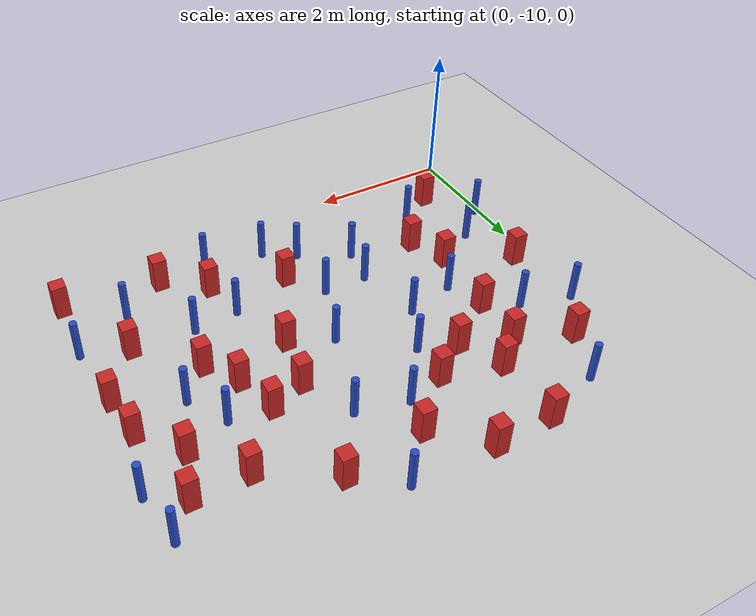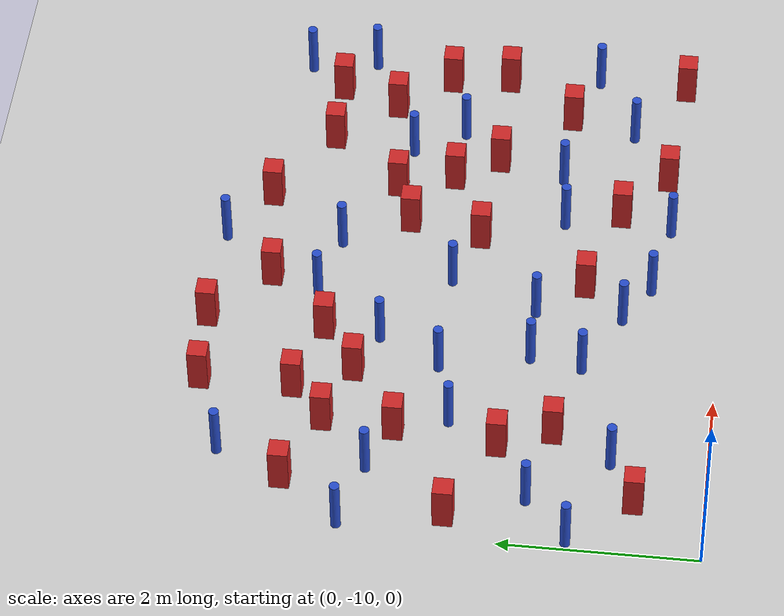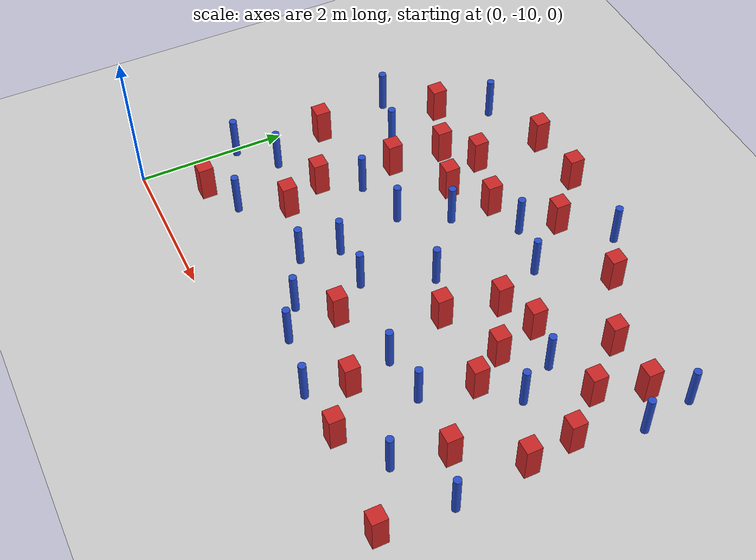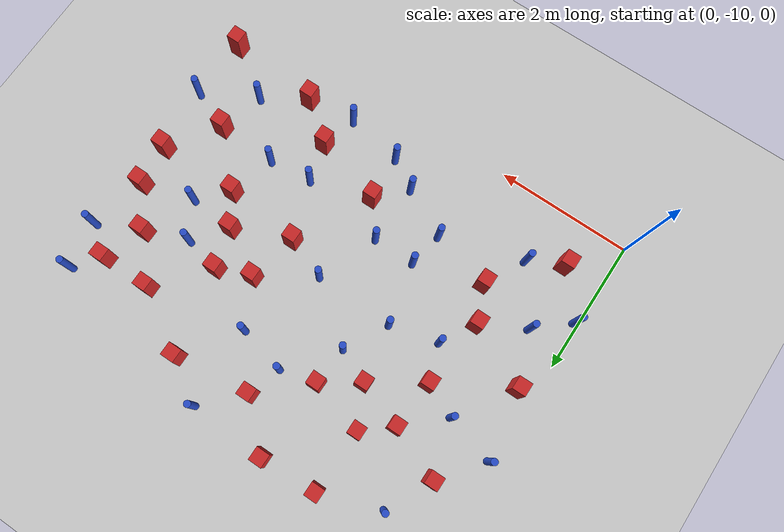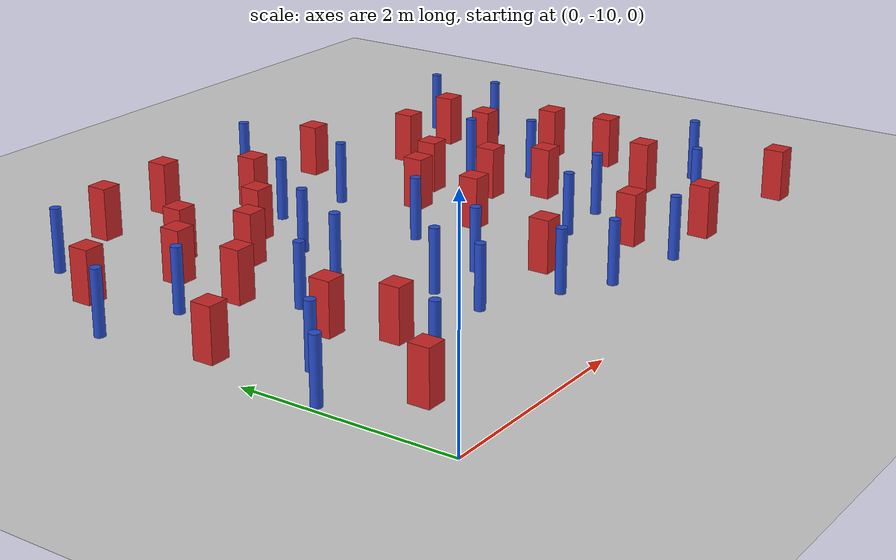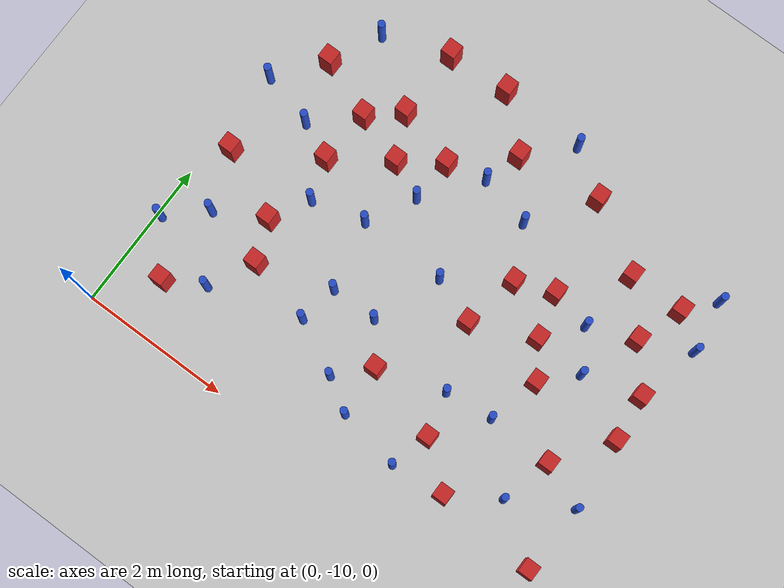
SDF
<sdf version="1.6">
 <world name="default">
  <model name="ground_plane">
   <static>1</static>
   <link name="link">
    <collision name="collision">
     <geometry><plane><normal>0 0 1</normal><size>100 100</size></plane></geometry>
     <surface><friction><ode><mu>100</mu><mu2>50</mu2></ode></friction></surface>
    </collision>
    <visual name="visual">
     <cast_shadows>0</cast_shadows>
     <geometry><plane><normal>0 0 1</normal><size>100 100</size></plane></geometry>
     <material>
      <ambient>1.0 1.0 1.0 1.0</ambient>
      <diffuse>0.8 0.8 0.8 1.0</diffuse>
      <specular>0.01 0.01 0.01 1.000000</specular>
     </material>
    </visual>
   </link>
  </model>
  <model name="pole_obstacle1">
   <static>true</static>
   <pose>4.88868578763 -8.25495165366 7.38925637345e-09 -8.471706928e-08 1.24976765081e-08 -1.74513093015e-07</pose>
   <link name="link">
    <pose>0 0 0.3 0 -0 0</pose>
    <inertial>
     <mass>1</mass>
     <inertia><ixx>0.145833</ixx><ixy>0</ixy><ixz>0</ixz><iyy>0.145833</iyy><iyz>0</iyz><izz>0.125</izz></inertia>
    </inertial>
    <collision name="collision">
     <geometry><cylinder><radius>0.05</radius><length>.6</length></cylinder></geometry>
    </collision>
    <visual name="visual">
     <geometry><cylinder><radius>0.05</radius><length>.6</length></cylinder></geometry>
     <material>
      <script><name>Gazebo/Blue</name><uri>file://media/materials/scripts/gazebo.material</uri></script>
     </material>
    </visual>
   </link>
  </model>
  <model name="pole_obstacle3">
   <static>true</static>
   <pose>5.14229467991 -6.63828792277 7.38925637345e-09 -8.47170692796e-08 1.24976764786e-08 -1.74513093032e-07</pose>
   <link name="link">
    <pose>0 0 0.3 0 -0 0</pose>
    <inertial>
     <mass>1</mass>
     <inertia><ixx>0.145833</ixx><ixy>0</ixy><ixz>0</ixz><iyy>0.145833</iyy><iyz>0</iyz><izz>0.125</izz></inertia>
    </inertial>
    <collision name="collision">
     <geometry><cylinder><radius>0.05</radius><length>.6</length></cylinder></geometry>
    </collision>
    <visual name="visual">
     <geometry><cylinder><radius>0.05</radius><length>.6</length></cylinder></geometry>
     <material>
      <script><name>Gazebo/Blue</name><uri>file://media/materials/scripts/gazebo.material</uri></script>
     </material>
    </visual>
   </link>
  </model>
  <model name="square_post_obstacle4">
   <static>true</static>
   <pose>5.75681799683 -8.28340268561 1.91545236811e-07 -7.35059704564e-06 1.12565212e-07 2.39332434364e-05</pose>
   <link name="link">
    <pose>0 0 0.25 0 -0 0</pose>
    <inertial>
     <mass>100</mass>
     <inertia>
      <ixx>0.166667</ixx>
      <ixy>0</ixy>
      <ixz>0</ixz>
      <iyy>0.166667</iyy>
      <iyz>0</iyz>
      <izz>0.166667</izz>
     </inertia>
    </inertial>
    <collision name="collision"><geometry><box><size>.2 .2 .5</size></box></geometry></collision>
    <visual name="visual">
     <geometry><box><size>.2 .2 .5</size></box></geometry>
     <material>
      <script><name>Gazebo/Red</name><uri>file://media/materials/scripts/gazebo.material</uri></script>
     </material>
    </visual>
   </link>
  </model>
  <model name="square_post_obstacle7">
   <static>true</static>
   <pose>5.75419726589 -6.40110719447 1.91545236811e-07 -7.35059704564e-06 1.12565212e-07 2.39332434364e-05</pose>
   <link name="link">
    <pose>0 0 0.25 0 -0 0</pose>
    <inertial>
     <mass>100</mass>
     <inertia>
      <ixx>0.166667</ixx>
      <ixy>0</ixy>
      <ixz>0</ixz>
      <iyy>0.166667</iyy>
      <iyz>0</iyz>
      <izz>0.166667</izz>
     </inertia>
    </inertial>
    <collision name="collision"><geometry><box><size>.2 .2 .5</size></box></geometry></collision>
    <visual name="visual">
     <geometry><box><size>.2 .2 .5</size></box></geometry>
     <material>
      <script><name>Gazebo/Red</name><uri>file://media/materials/scripts/gazebo.material</uri></script>
     </material>
    </visual>
   </link>
  </model>
  <model name="square_post_obstacle11">
   <static>true</static>
   <pose>4.39549333194 -8.90382253059 1.91545236811e-07 -7.35059704564e-06 1.12565212e-07 2.39332434364e-05</pose>
   <link name="link">
    <pose>0 0 0.25 0 -0 0</pose>
    <inertial>
     <mass>100</mass>
     <inertia>
      <ixx>0.166667</ixx>
      <ixy>0</ixy>
      <ixz>0</ixz>
      <iyy>0.166667</iyy>
      <iyz>0</iyz>
      <izz>0.166667</izz>
     </inertia>
    </inertial>
    <collision name="collision"><geometry><box><size>.2 .2 .5</size></box></geometry></collision>
    <visual name="visual">
     <geometry><box><size>.2 .2 .5</size></box></geometry>
     <material>
      <script><name>Gazebo/Red</name><uri>file://media/materials/scripts/gazebo.material</uri></script>
     </material>
    </visual>
   </link>
  </model>
  <model name="square_post_obstacle13">
   <static>true</static>
   <pose>4.59887530118 -6.53221918266 1.91545236811e-07 -7.35059704564e-06 1.12565212e-07 2.39332434364e-05</pose>
   <link name="link">
    <pose>0 0 0.25 0 -0 0</pose>
    <inertial>
     <mass>100</mass>
     <inertia>
      <ixx>0.166667</ixx>
      <ixy>0</ixy>
      <ixz>0</ixz>
      <iyy>0.166667</iyy>
      <iyz>0</iyz>
      <izz>0.166667</izz>
     </inertia>
    </inertial>
    <collision name="collision"><geometry><box><size>.2 .2 .5</size></box></geometry></collision>
    <visual name="visual">
     <geometry><box><size>.2 .2 .5</size></box></geometry>
     <material>
      <script><name>Gazebo/Red</name><uri>file://media/materials/scripts/gazebo.material</uri></script>
     </material>
    </visual>
   </link>
  </model>
  <model name="pole_obstacle12">
   <static>true</static>
   <pose>0.798774729147 -6.63545786462 7.38925637345e-09 -8.471706928e-08 1.24976765086e-08 -1.74513093015e-07</pose>
   <link name="link">
    <pose>0 0 0.3 0 -0 0</pose>
    <inertial>
     <mass>1</mass>
     <inertia><ixx>0.145833</ixx><ixy>0</ixy><ixz>0</ixz><iyy>0.145833</iyy><iyz>0</iyz><izz>0.125</izz></inertia>
    </inertial>
    <collision name="collision">
     <geometry><cylinder><radius>0.05</radius><length>.6</length></cylinder></geometry>
    </collision>
    <visual name="visual">
     <geometry><cylinder><radius>0.05</radius><length>.6</length></cylinder></geometry>
     <material>
      <script><name>Gazebo/Blue</name><uri>file://media/materials/scripts/gazebo.material</uri></script>
     </material>
    </visual>
   </link>
  </model>
  <model name="pole_obstacle17">
   <static>true</static>
   <pose>3.42017889563 -9.2823077383 7.38925637345e-09 -8.47170692793e-08 1.24976764408e-08 -1.74513093041e-07</pose>
   <link name="link">
    <pose>0 0 0.3 0 -0 0</pose>
    <inertial>
     <mass>1</mass>
     <inertia><ixx>0.145833</ixx><ixy>0</ixy><ixz>0</ixz><iyy>0.145833</iyy><iyz>0</iyz><izz>0.125</izz></inertia>
    </inertial>
    <collision name="collision">
     <geometry><cylinder><radius>0.05</radius><length>.6</length></cylinder></geometry>
    </collision>
    <visual name="visual">
     <geometry><cylinder><radius>0.05</radius><length>.6</length></cylinder></geometry>
     <material>
      <script><name>Gazebo/Blue</name><uri>file://media/materials/scripts/gazebo.material</uri></script>
     </material>
    </visual>
   </link>
  </model>
  <model name="square_post_obstacle26">
   <static>true</static>
   <pose>6.26326169163 -7.56500785191 1.91545236811e-07 -7.35059704564e-06 1.12565212e-07 2.39332434364e-05</pose>
   <link name="link">
    <pose>0 0 0.25 0 -0 0</pose>
    <inertial>
     <mass>100</mass>
     <inertia>
      <ixx>0.166667</ixx>
      <ixy>0</ixy>
      <ixz>0</ixz>
      <iyy>0.166667</iyy>
      <iyz>0</iyz>
      <izz>0.166667</izz>
     </inertia>
    </inertial>
    <collision name="collision"><geometry><box><size>.2 .2 .5</size></box></geometry></collision>
    <visual name="visual">
     <geometry><box><size>.2 .2 .5</size></box></geometry>
     <material>
      <script><name>Gazebo/Red</name><uri>file://media/materials/scripts/gazebo.material</uri></script>
     </material>
    </visual>
   </link>
  </model>
  <model name="pole_obstacle26">
   <static>true</static>
   <pose>3.06292494743 -5.87472766804 7.38925637345e-09 -8.47170692798e-08 1.24976765033e-08 -1.74513093019e-07</pose>
   <link name="link">
    <pose>0 0 0.3 0 -0 0</pose>
    <inertial>
     <mass>1</mass>
     <inertia><ixx>0.145833</ixx><ixy>0</ixy><ixz>0</ixz><iyy>0.145833</iyy><iyz>0</iyz><izz>0.125</izz></inertia>
    </inertial>
    <collision name="collision">
     <geometry><cylinder><radius>0.05</radius><length>.6</length></cylinder></geometry>
    </collision>
    <visual name="visual">
     <geometry><cylinder><radius>0.05</radius><length>.6</length></cylinder></geometry>
     <material>
      <script><name>Gazebo/Blue</name><uri>file://media/materials/scripts/gazebo.material</uri></script>
     </material>
    </visual>
   </link>
  </model>
  <model name="square_post_obstacle40">
   <static>true</static>
   <pose>1.75595830095 -4.8434173796 1.91545236811e-07 -7.35059704564e-06 1.12565212e-07 2.39332434364e-05</pose>
   <link name="link">
    <pose>0 0 0.25 0 -0 0</pose>
    <inertial>
     <mass>100</mass>
     <inertia>
      <ixx>0.166667</ixx>
      <ixy>0</ixy>
      <ixz>0</ixz>
      <iyy>0.166667</iyy>
      <iyz>0</iyz>
      <izz>0.166667</izz>
     </inertia>
    </inertial>
    <collision name="collision"><geometry><box><size>.2 .2 .5</size></box></geometry></collision>
    <visual name="visual">
     <geometry><box><size>.2 .2 .5</size></box></geometry>
     <material>
      <script><name>Gazebo/Red</name><uri>file://media/materials/scripts/gazebo.material</uri></script>
     </material>
    </visual>
   </link>
  </model>
  <model name="square_post_obstacle62">
   <static>true</static>
   <pose>2.58952404879 -4.80327046205 1.91545236811e-07 -7.35059704564e-06 1.12565212e-07 2.39332434364e-05</pose>
   <link name="link">
    <pose>0 0 0.25 0 -0 0</pose>
    <inertial>
     <mass>100</mass>
     <inertia>
      <ixx>0.166667</ixx>
      <ixy>0</ixy>
      <ixz>0</ixz>
      <iyy>0.166667</iyy>
      <iyz>0</iyz>
      <izz>0.166667</izz>
     </inertia>
    </inertial>
    <collision name="collision"><geometry><box><size>.2 .2 .5</size></box></geometry></collision>
    <visual name="visual">
     <geometry><box><size>.2 .2 .5</size></box></geometry>
     <material>
      <script><name>Gazebo/Red</name><uri>file://media/materials/scripts/gazebo.material</uri></script>
     </material>
    </visual>
   </link>
  </model>
  <model name="square_post_obstacle65">
   <static>true</static>
   <pose>0.569969009175 -5.82086949982 1.91545236811e-07 -7.35059704564e-06 1.12565212e-07 2.39332434364e-05</pose>
   <link name="link">
    <pose>0 0 0.25 0 -0 0</pose>
    <inertial>
     <mass>100</mass>
     <inertia>
      <ixx>0.166667</ixx>
      <ixy>0</ixy>
      <ixz>0</ixz>
      <iyy>0.166667</iyy>
      <iyz>0</iyz>
      <izz>0.166667</izz>
     </inertia>
    </inertial>
    <collision name="collision"><geometry><box><size>.2 .2 .5</size></box></geometry></collision>
    <visual name="visual">
     <geometry><box><size>.2 .2 .5</size></box></geometry>
     <material>
      <script><name>Gazebo/Red</name><uri>file://media/materials/scripts/gazebo.material</uri></script>
     </material>
    </visual>
   </link>
  </model>
  <model name="pole_obstacle63">
   <static>true</static>
   <pose>3.34277417021 -7.23564268222 7.38925637345e-09 -8.47170692798e-08 1.24976765033e-08 -1.74513093019e-07</pose>
   <link name="link">
    <pose>0 0 0.3 0 -0 0</pose>
    <inertial>
     <mass>1</mass>
     <inertia><ixx>0.145833</ixx><ixy>0</ixy><ixz>0</ixz><iyy>0.145833</iyy><iyz>0</iyz><izz>0.125</izz></inertia>
    </inertial>
    <collision name="collision">
     <geometry><cylinder><radius>0.05</radius><length>.6</length></cylinder></geometry>
    </collision>
    <visual name="visual">
     <geometry><cylinder><radius>0.05</radius><length>.6</length></cylinder></geometry>
     <material>
      <script><name>Gazebo/Blue</name><uri>file://media/materials/scripts/gazebo.material</uri></script>
     </material>
    </visual>
   </link>
  </model>
  <model name="pole_obstacle67">
   <static>true</static>
   <pose>3.76143701664 -6.04238401309 7.38925637345e-09 -8.47170692798e-08 1.24976765033e-08 -1.74513093019e-07</pose>
   <link name="link">
    <pose>0 0 0.3 0 -0 0</pose>
    <inertial>
     <mass>1</mass>
     <inertia><ixx>0.145833</ixx><ixy>0</ixy><ixz>0</ixz><iyy>0.145833</iyy><iyz>0</iyz><izz>0.125</izz></inertia>
    </inertial>
    <collision name="collision">
     <geometry><cylinder><radius>0.05</radius><length>.6</length></cylinder></geometry>
    </collision>
    <visual name="visual">
     <geometry><cylinder><radius>0.05</radius><length>.6</length></cylinder></geometry>
     <material>
      <script><name>Gazebo/Blue</name><uri>file://media/materials/scripts/gazebo.material</uri></script>
     </material>
    </visual>
   </link>
  </model>
  <model name="square_post_obstacle71">
   <static>true</static>
   <pose>6.19853455164 -6.94722326897 1.91545236811e-07 -7.35059704564e-06 1.12565212e-07 2.39332434364e-05</pose>
   <link name="link">
    <pose>0 0 0.25 0 -0 0</pose>
    <inertial>
     <mass>100</mass>
     <inertia>
      <ixx>0.166667</ixx>
      <ixy>0</ixy>
      <ixz>0</ixz>
      <iyy>0.166667</iyy>
      <iyz>0</iyz>
      <izz>0.166667</izz>
     </inertia>
    </inertial>
    <collision name="collision"><geometry><box><size>.2 .2 .5</size></box></geometry></collision>
    <visual name="visual">
     <geometry><box><size>.2 .2 .5</size></box></geometry>
     <material>
      <script><name>Gazebo/Red</name><uri>file://media/materials/scripts/gazebo.material</uri></script>
     </material>
    </visual>
   </link>
  </model>
  <model name="square_post_obstacle75">
   <static>true</static>
   <pose>4.33300940626 -5.2469072653 1.91545236811e-07 -7.35059704564e-06 1.12565212e-07 2.39332434364e-05</pose>
   <link name="link">
    <pose>0 0 0.25 0 -0 0</pose>
    <inertial>
     <mass>100</mass>
     <inertia>
      <ixx>0.166667</ixx>
      <ixy>0</ixy>
      <ixz>0</ixz>
      <iyy>0.166667</iyy>
      <iyz>0</iyz>
      <izz>0.166667</izz>
     </inertia>
    </inertial>
    <collision name="collision"><geometry><box><size>.2 .2 .5</size></box></geometry></collision>
    <visual name="visual">
     <geometry><box><size>.2 .2 .5</size></box></geometry>
     <material>
      <script><name>Gazebo/Red</name><uri>file://media/materials/scripts/gazebo.material</uri></script>
     </material>
    </visual>
   </link>
  </model>
  <model name="pole_obstacle69">
   <static>true</static>
   <pose>5.45205493208 -7.16051437076 7.38925637345e-09 -8.47170692796e-08 1.24976764786e-08 -1.74513093032e-07</pose>
   <link name="link">
    <pose>0 0 0.3 0 -0 0</pose>
    <inertial>
     <mass>1</mass>
     <inertia><ixx>0.145833</ixx><ixy>0</ixy><ixz>0</ixz><iyy>0.145833</iyy><iyz>0</iyz><izz>0.125</izz></inertia>
    </inertial>
    <collision name="collision">
     <geometry><cylinder><radius>0.05</radius><length>.6</length></cylinder></geometry>
    </collision>
    <visual name="visual">
     <geometry><cylinder><radius>0.05</radius><length>.6</length></cylinder></geometry>
     <material>
      <script><name>Gazebo/Blue</name><uri>file://media/materials/scripts/gazebo.material</uri></script>
     </material>
    </visual>
   </link>
  </model>
  <model name="square_post_obstacle76">
   <static>true</static>
   <pose>1.73976718946 -5.78930880559 1.91545236811e-07 -7.35059704564e-06 1.12565212e-07 2.39332434364e-05</pose>
   <link name="link">
    <pose>0 0 0.25 0 -0 0</pose>
    <inertial>
     <mass>100</mass>
     <inertia>
      <ixx>0.166667</ixx>
      <ixy>0</ixy>
      <ixz>0</ixz>
      <iyy>0.166667</iyy>
      <iyz>0</iyz>
      <izz>0.166667</izz>
     </inertia>
    </inertial>
    <collision name="collision"><geometry><box><size>.2 .2 .5</size></box></geometry></collision>
    <visual name="visual">
     <geometry><box><size>.2 .2 .5</size></box></geometry>
     <material>
      <script><name>Gazebo/Red</name><uri>file://media/materials/scripts/gazebo.material</uri></script>
     </material>
    </visual>
   </link>
  </model>
  <model name="square_post_obstacle81">
   <static>true</static>
   <pose>2.01713389828 -6.36957636679 1.91545236811e-07 -7.35059704564e-06 1.12565212e-07 2.39332434364e-05</pose>
   <link name="link">
    <pose>0 0 0.25 0 -0 0</pose>
    <inertial>
     <mass>100</mass>
     <inertia>
      <ixx>0.166667</ixx>
      <ixy>0</ixy>
      <ixz>0</ixz>
      <iyy>0.166667</iyy>
      <iyz>0</iyz>
      <izz>0.166667</izz>
     </inertia>
    </inertial>
    <collision name="collision"><geometry><box><size>.2 .2 .5</size></box></geometry></collision>
    <visual name="visual">
     <geometry><box><size>.2 .2 .5</size></box></geometry>
     <material>
      <script><name>Gazebo/Red</name><uri>file://media/materials/scripts/gazebo.material</uri></script>
     </material>
    </visual>
   </link>
  </model>
  <model name="pole_obstacle91">
   <static>true</static>
   <pose>6.36542203166 -8.52879415948 7.38925637345e-09 -8.471706928e-08 1.24976765081e-08 -1.74513093015e-07</pose>
   <link name="link">
    <pose>0 0 0.3 0 -0 0</pose>
    <inertial>
     <mass>1</mass>
     <inertia><ixx>0.145833</ixx><ixy>0</ixy><ixz>0</ixz><iyy>0.145833</iyy><iyz>0</iyz><izz>0.125</izz></inertia>
    </inertial>
    <collision name="collision">
     <geometry><cylinder><radius>0.05</radius><length>.6</length></cylinder></geometry>
    </collision>
    <visual name="visual">
     <geometry><cylinder><radius>0.05</radius><length>.6</length></cylinder></geometry>
     <material>
      <script><name>Gazebo/Blue</name><uri>file://media/materials/scripts/gazebo.material</uri></script>
     </material>
    </visual>
   </link>
  </model>
  <model name="pole_obstacle94">
   <static>true</static>
   <pose>4.25289669648 -9.43053115323 7.38925637345e-09 -8.471706928e-08 1.24976765081e-08 -1.74513093015e-07</pose>
   <link name="link">
    <pose>0 0 0.3 0 -0 0</pose>
    <inertial>
     <mass>1</mass>
     <inertia><ixx>0.145833</ixx><ixy>0</ixy><ixz>0</ixz><iyy>0.145833</iyy><iyz>0</iyz><izz>0.125</izz></inertia>
    </inertial>
    <collision name="collision">
     <geometry><cylinder><radius>0.05</radius><length>.6</length></cylinder></geometry>
    </collision>
    <visual name="visual">
     <geometry><cylinder><radius>0.05</radius><length>.6</length></cylinder></geometry>
     <material>
      <script><name>Gazebo/Blue</name><uri>file://media/materials/scripts/gazebo.material</uri></script>
     </material>
    </visual>
   </link>
  </model>
  <model name="pole_obstacle100">
   <static>true</static>
   <pose>0.879733276484 -5.14130844001 7.38925637345e-09 -8.471706928e-08 1.24976765086e-08 -1.74513093015e-07</pose>
   <link name="link">
    <pose>0 0 0.3 0 -0 0</pose>
    <inertial>
     <mass>1</mass>
     <inertia><ixx>0.145833</ixx><ixy>0</ixy><ixz>0</ixz><iyy>0.145833</iyy><iyz>0</iyz><izz>0.125</izz></inertia>
    </inertial>
    <collision name="collision">
     <geometry><cylinder><radius>0.05</radius><length>.6</length></cylinder></geometry>
    </collision>
    <visual name="visual">
     <geometry><cylinder><radius>0.05</radius><length>.6</length></cylinder></geometry>
     <material>
      <script><name>Gazebo/Blue</name><uri>file://media/materials/scripts/gazebo.material</uri></script>
     </material>
    </visual>
   </link>
  </model>
  <model name="square_post_obstacle92">
   <static>true</static>
   <pose>1.18576369149 -7.90044200295 1.91545236811e-07 -7.35059704564e-06 1.12565212e-07 2.39332434364e-05</pose>
   <link name="link">
    <pose>0 0 0.25 0 -0 0</pose>
    <inertial>
     <mass>100</mass>
     <inertia>
      <ixx>0.166667</ixx>
      <ixy>0</ixy>
      <ixz>0</ixz>
      <iyy>0.166667</iyy>
      <iyz>0</iyz>
      <izz>0.166667</izz>
     </inertia>
    </inertial>
    <collision name="collision"><geometry><box><size>.2 .2 .5</size></box></geometry></collision>
    <visual name="visual">
     <geometry><box><size>.2 .2 .5</size></box></geometry>
     <material>
      <script><name>Gazebo/Red</name><uri>file://media/materials/scripts/gazebo.material</uri></script>
     </material>
    </visual>
   </link>
  </model>
  <model name="pole_obstacle107">
   <static>true</static>
   <pose>1.46633449244 -7.39205538977 7.38925637345e-09 -8.47170692799e-08 1.24976765033e-08 -1.74513093018e-07</pose>
   <link name="link">
    <pose>0 0 0.3 0 -0 0</pose>
    <inertial>
     <mass>1</mass>
     <inertia><ixx>0.145833</ixx><ixy>0</ixy><ixz>0</ixz><iyy>0.145833</iyy><iyz>0</iyz><izz>0.125</izz></inertia>
    </inertial>
    <collision name="collision">
     <geometry><cylinder><radius>0.05</radius><length>.6</length></cylinder></geometry>
    </collision>
    <visual name="visual">
     <geometry><cylinder><radius>0.05</radius><length>.6</length></cylinder></geometry>
     <material>
      <script><name>Gazebo/Blue</name><uri>file://media/materials/scripts/gazebo.material</uri></script>
     </material>
    </visual>
   </link>
  </model>
  <model name="pole_obstacle112">
   <static>true</static>
   <pose>0.079034568359 -6.43443179888 7.38925637345e-09 -8.47170692799e-08 1.24976765062e-08 -1.74513093018e-07</pose>
   <link name="link">
    <pose>0 0 0.3 0 -0 0</pose>
    <inertial>
     <mass>1</mass>
     <inertia><ixx>0.145833</ixx><ixy>0</ixy><ixz>0</ixz><iyy>0.145833</iyy><iyz>0</iyz><izz>0.125</izz></inertia>
    </inertial>
    <collision name="collision">
     <geometry><cylinder><radius>0.05</radius><length>.6</length></cylinder></geometry>
    </collision>
    <visual name="visual">
     <geometry><cylinder><radius>0.05</radius><length>.6</length></cylinder></geometry>
     <material>
      <script><name>Gazebo/Blue</name><uri>file://media/materials/scripts/gazebo.material</uri></script>
     </material>
    </visual>
   </link>
  </model>
  <model name="square_post_obstacle108">
   <static>true</static>
   <pose>5.22752889831 -5.79334582153 1.91545236811e-07 -7.35059704564e-06 1.12565212e-07 2.39332434364e-05</pose>
   <link name="link">
    <pose>0 0 0.25 0 -0 0</pose>
    <inertial>
     <mass>100</mass>
     <inertia>
      <ixx>0.166667</ixx>
      <ixy>0</ixy>
      <ixz>0</ixz>
      <iyy>0.166667</iyy>
      <iyz>0</iyz>
      <izz>0.166667</izz>
     </inertia>
    </inertial>
    <collision name="collision"><geometry><box><size>.2 .2 .5</size></box></geometry></collision>
    <visual name="visual">
     <geometry><box><size>.2 .2 .5</size></box></geometry>
     <material>
      <script><name>Gazebo/Red</name><uri>file://media/materials/scripts/gazebo.material</uri></script>
     </material>
    </visual>
   </link>
  </model>
  <model name="square_post_obstacle111">
   <static>true</static>
   <pose>3.37644430926 -8.60439501167 1.91545236811e-07 -7.35059704564e-06 1.12565212e-07 2.39332434364e-05</pose>
   <link name="link">
    <pose>0 0 0.25 0 -0 0</pose>
    <inertial>
     <mass>100</mass>
     <inertia>
      <ixx>0.166667</ixx>
      <ixy>0</ixy>
      <ixz>0</ixz>
      <iyy>0.166667</iyy>
      <iyz>0</iyz>
      <izz>0.166667</izz>
     </inertia>
    </inertial>
    <collision name="collision"><geometry><box><size>.2 .2 .5</size></box></geometry></collision>
    <visual name="visual">
     <geometry><box><size>.2 .2 .5</size></box></geometry>
     <material>
      <script><name>Gazebo/Red</name><uri>file://media/materials/scripts/gazebo.material</uri></script>
     </material>
    </visual>
   </link>
  </model>
  <model name="square_post_obstacle114">
   <static>true</static>
   <pose>0.265320890196 -7.46584918624 1.91545236811e-07 -7.35059704564e-06 1.12565212e-07 2.39332434364e-05</pose>
   <link name="link">
    <pose>0 0 0.25 0 -0 0</pose>
    <inertial>
     <mass>100</mass>
     <inertia>
      <ixx>0.166667</ixx>
      <ixy>0</ixy>
      <ixz>0</ixz>
      <iyy>0.166667</iyy>
      <iyz>0</iyz>
      <izz>0.166667</izz>
     </inertia>
    </inertial>
    <collision name="collision"><geometry><box><size>.2 .2 .5</size></box></geometry></collision>
    <visual name="visual">
     <geometry><box><size>.2 .2 .5</size></box></geometry>
     <material>
      <script><name>Gazebo/Red</name><uri>file://media/materials/scripts/gazebo.material</uri></script>
     </material>
    </visual>
   </link>
  </model>
  <model name="pole_obstacle136">
   <static>true</static>
   <pose>3.73192202659 -4.83566231306 7.38925637345e-09 -8.47170692798e-08 1.24976765033e-08 -1.74513093019e-07</pose>
   <link name="link">
    <pose>0 0 0.3 0 -0 0</pose>
    <inertial>
     <mass>1</mass>
     <inertia><ixx>0.145833</ixx><ixy>0</ixy><ixz>0</ixz><iyy>0.145833</iyy><iyz>0</iyz><izz>0.125</izz></inertia>
    </inertial>
    <collision name="collision">
     <geometry><cylinder><radius>0.05</radius><length>.6</length></cylinder></geometry>
    </collision>
    <visual name="visual">
     <geometry><cylinder><radius>0.05</radius><length>.6</length></cylinder></geometry>
     <material>
      <script><name>Gazebo/Blue</name><uri>file://media/materials/scripts/gazebo.material</uri></script>
     </material>
    </visual>
   </link>
  </model>
  <model name="pole_obstacle137">
   <static>true</static>
   <pose>6.29278359755 -5.4070558161 7.38925637345e-09 -8.47170692796e-08 1.24976764786e-08 -1.74513093032e-07</pose>
   <link name="link">
    <pose>0 0 0.3 0 -0 0</pose>
    <inertial>
     <mass>1</mass>
     <inertia><ixx>0.145833</ixx><ixy>0</ixy><ixz>0</ixz><iyy>0.145833</iyy><iyz>0</iyz><izz>0.125</izz></inertia>
    </inertial>
    <collision name="collision">
     <geometry><cylinder><radius>0.05</radius><length>.6</length></cylinder></geometry>
    </collision>
    <visual name="visual">
     <geometry><cylinder><radius>0.05</radius><length>.6</length></cylinder></geometry>
     <material>
      <script><name>Gazebo/Blue</name><uri>file://media/materials/scripts/gazebo.material</uri></script>
     </material>
    </visual>
   </link>
  </model>
  <model name="square_post_obstacle119">
   <static>true</static>
   <pose>4.10389940205 -6.72223858875 1.91545236811e-07 -7.35059704564e-06 1.12565212e-07 2.39332434364e-05</pose>
   <link name="link">
    <pose>0 0 0.25 0 -0 0</pose>
    <inertial>
     <mass>100</mass>
     <inertia>
      <ixx>0.166667</ixx>
      <ixy>0</ixy>
      <ixz>0</ixz>
      <iyy>0.166667</iyy>
      <iyz>0</iyz>
      <izz>0.166667</izz>
     </inertia>
    </inertial>
    <collision name="collision"><geometry><box><size>.2 .2 .5</size></box></geometry></collision>
    <visual name="visual">
     <geometry><box><size>.2 .2 .5</size></box></geometry>
     <material>
      <script><name>Gazebo/Red</name><uri>file://media/materials/scripts/gazebo.material</uri></script>
     </material>
    </visual>
   </link>
  </model>
  <model name="square_post_obstacle125">
   <static>true</static>
   <pose>1.40447179519 -8.43629271616 1.91545236811e-07 -7.35059704564e-06 1.12565212e-07 2.39332434364e-05</pose>
   <link name="link">
    <pose>0 0 0.25 0 -0 0</pose>
    <inertial>
     <mass>100</mass>
     <inertia>
      <ixx>0.166667</ixx>
      <ixy>0</ixy>
      <ixz>0</ixz>
      <iyy>0.166667</iyy>
      <iyz>0</iyz>
      <izz>0.166667</izz>
     </inertia>
    </inertial>
    <collision name="collision"><geometry><box><size>.2 .2 .5</size></box></geometry></collision>
    <visual name="visual">
     <geometry><box><size>.2 .2 .5</size></box></geometry>
     <material>
      <script><name>Gazebo/Red</name><uri>file://media/materials/scripts/gazebo.material</uri></script>
     </material>
    </visual>
   </link>
  </model>
  <model name="pole_obstacle142">
   <static>true</static>
   <pose>0.548882190099 -8.24452357814 7.38925637345e-09 -8.47170692797e-08 1.24976764765e-08 -1.74513093034e-07</pose>
   <link name="link">
    <pose>0 0 0.3 0 -0 0</pose>
    <inertial>
     <mass>1</mass>
     <inertia><ixx>0.145833</ixx><ixy>0</ixy><ixz>0</ixz><iyy>0.145833</iyy><iyz>0</iyz><izz>0.125</izz></inertia>
    </inertial>
    <collision name="collision">
     <geometry><cylinder><radius>0.05</radius><length>.6</length></cylinder></geometry>
    </collision>
    <visual name="visual">
     <geometry><cylinder><radius>0.05</radius><length>.6</length></cylinder></geometry>
     <material>
      <script><name>Gazebo/Blue</name><uri>file://media/materials/scripts/gazebo.material</uri></script>
     </material>
    </visual>
   </link>
  </model>
  <model name="square_post_obstacle130">
   <static>true</static>
   <pose>3.95118221063 -7.46880111729 1.91545236811e-07 -7.35059704564e-06 1.12565212e-07 2.39332434364e-05</pose>
   <link name="link">
    <pose>0 0 0.25 0 -0 0</pose>
    <inertial>
     <mass>100</mass>
     <inertia>
      <ixx>0.166667</ixx>
      <ixy>0</ixy>
      <ixz>0</ixz>
      <iyy>0.166667</iyy>
      <iyz>0</iyz>
      <izz>0.166667</izz>
     </inertia>
    </inertial>
    <collision name="collision"><geometry><box><size>.2 .2 .5</size></box></geometry></collision>
    <visual name="visual">
     <geometry><box><size>.2 .2 .5</size></box></geometry>
     <material>
      <script><name>Gazebo/Red</name><uri>file://media/materials/scripts/gazebo.material</uri></script>
     </material>
    </visual>
   </link>
  </model>
  <model name="pole_obstacle147">
   <static>true</static>
   <pose>0.0776359898516 -8.67325189914 7.38925637345e-09 -8.47170692797e-08 1.24976764742e-08 -1.74513093035e-07</pose>
   <link name="link">
    <pose>0 0 0.3 0 -0 0</pose>
    <inertial>
     <mass>1</mass>
     <inertia><ixx>0.145833</ixx><ixy>0</ixy><ixz>0</ixz><iyy>0.145833</iyy><iyz>0</iyz><izz>0.125</izz></inertia>
    </inertial>
    <collision name="collision">
     <geometry><cylinder><radius>0.05</radius><length>.6</length></cylinder></geometry>
    </collision>
    <visual name="visual">
     <geometry><cylinder><radius>0.05</radius><length>.6</length></cylinder></geometry>
     <material>
      <script><name>Gazebo/Blue</name><uri>file://media/materials/scripts/gazebo.material</uri></script>
     </material>
    </visual>
   </link>
  </model>
  <model name="square_post_obstacle137">
   <static>true</static>
   <pose>6.31829562772 -9.46239827775 1.91545236811e-07 -7.35059704564e-06 1.12565212e-07 2.39332434364e-05</pose>
   <link name="link">
    <pose>0 0 0.25 0 -0 0</pose>
    <inertial>
     <mass>100</mass>
     <inertia>
      <ixx>0.166667</ixx>
      <ixy>0</ixy>
      <ixz>0</ixz>
      <iyy>0.166667</iyy>
      <iyz>0</iyz>
      <izz>0.166667</izz>
     </inertia>
    </inertial>
    <collision name="collision"><geometry><box><size>.2 .2 .5</size></box></geometry></collision>
    <visual name="visual">
     <geometry><box><size>.2 .2 .5</size></box></geometry>
     <material>
      <script><name>Gazebo/Red</name><uri>file://media/materials/scripts/gazebo.material</uri></script>
     </material>
    </visual>
   </link>
  </model>
  <model name="pole_obstacle160">
   <static>true</static>
   <pose>2.17071362064 -7.21358862025 7.38925637345e-09 -8.47170692798e-08 1.24976765033e-08 -1.74513093019e-07</pose>
   <link name="link">
    <pose>0 0 0.3 0 -0 0</pose>
    <inertial>
     <mass>1</mass>
     <inertia><ixx>0.145833</ixx><ixy>0</ixy><ixz>0</ixz><iyy>0.145833</iyy><iyz>0</iyz><izz>0.125</izz></inertia>
    </inertial>
    <collision name="collision">
     <geometry><cylinder><radius>0.05</radius><length>.6</length></cylinder></geometry>
    </collision>
    <visual name="visual">
     <geometry><cylinder><radius>0.05</radius><length>.6</length></cylinder></geometry>
     <material>
      <script><name>Gazebo/Blue</name><uri>file://media/materials/scripts/gazebo.material</uri></script>
     </material>
    </visual>
   </link>
  </model>
  <model name="square_post_obstacle156">
   <static>true</static>
   <pose>4.76539369713 -7.11798244326 1.91545236811e-07 -7.35059704564e-06 1.12565212e-07 2.39332434364e-05</pose>
   <link name="link">
    <pose>0 0 0.25 0 -0 0</pose>
    <inertial>
     <mass>100</mass>
     <inertia>
      <ixx>0.166667</ixx>
      <ixy>0</ixy>
      <ixz>0</ixz>
      <iyy>0.166667</iyy>
      <iyz>0</iyz>
      <izz>0.166667</izz>
     </inertia>
    </inertial>
    <collision name="collision"><geometry><box><size>.2 .2 .5</size></box></geometry></collision>
    <visual name="visual">
     <geometry><box><size>.2 .2 .5</size></box></geometry>
     <material>
      <script><name>Gazebo/Red</name><uri>file://media/materials/scripts/gazebo.material</uri></script>
     </material>
    </visual>
   </link>
  </model>
  <model name="pole_obstacle164">
   <static>true</static>
   <pose>5.58561902201 -8.95623634026 7.38925637345e-09 -8.471706928e-08 1.24976765081e-08 -1.74513093015e-07</pose>
   <link name="link">
    <pose>0 0 0.3 0 -0 0</pose>
    <inertial>
     <mass>1</mass>
     <inertia><ixx>0.145833</ixx><ixy>0</ixy><ixz>0</ixz><iyy>0.145833</iyy><iyz>0</iyz><izz>0.125</izz></inertia>
    </inertial>
    <collision name="collision">
     <geometry><cylinder><radius>0.05</radius><length>.6</length></cylinder></geometry>
    </collision>
    <visual name="visual">
     <geometry><cylinder><radius>0.05</radius><length>.6</length></cylinder></geometry>
     <material>
      <script><name>Gazebo/Blue</name><uri>file://media/materials/scripts/gazebo.material</uri></script>
     </material>
    </visual>
   </link>
  </model>
  <model name="pole_obstacle169">
   <static>true</static>
   <pose>2.28776825716 -8.65349998977 7.38925637345e-09 -8.47170692793e-08 1.24976764408e-08 -1.74513093041e-07</pose>
   <link name="link">
    <pose>0 0 0.3 0 -0 0</pose>
    <inertial>
     <mass>1</mass>
     <inertia><ixx>0.145833</ixx><ixy>0</ixy><ixz>0</ixz><iyy>0.145833</iyy><iyz>0</iyz><izz>0.125</izz></inertia>
    </inertial>
    <collision name="collision">
     <geometry><cylinder><radius>0.05</radius><length>.6</length></cylinder></geometry>
    </collision>
    <visual name="visual">
     <geometry><cylinder><radius>0.05</radius><length>.6</length></cylinder></geometry>
     <material>
      <script><name>Gazebo/Blue</name><uri>file://media/materials/scripts/gazebo.material</uri></script>
     </material>
    </visual>
   </link>
  </model>
  <model name="square_post_obstacle162">
   <static>true</static>
   <pose>5.96841981236 -5.79057421088 1.91545236811e-07 -7.35059704564e-06 1.12565212e-07 2.39332434364e-05</pose>
   <link name="link">
    <pose>0 0 0.25 0 -0 0</pose>
    <inertial>
     <mass>100</mass>
     <inertia>
      <ixx>0.166667</ixx>
      <ixy>0</ixy>
      <ixz>0</ixz>
      <iyy>0.166667</iyy>
      <iyz>0</iyz>
      <izz>0.166667</izz>
     </inertia>
    </inertial>
    <collision name="collision"><geometry><box><size>.2 .2 .5</size></box></geometry></collision>
    <visual name="visual">
     <geometry><box><size>.2 .2 .5</size></box></geometry>
     <material>
      <script><name>Gazebo/Red</name><uri>file://media/materials/scripts/gazebo.material</uri></script>
     </material>
    </visual>
   </link>
  </model>
  <model name="square_post_obstacle164">
   <static>true</static>
   <pose>4.96333934249 -9.35478566173 1.91545236811e-07 -7.35059704564e-06 1.12565212e-07 2.39332434364e-05</pose>
   <link name="link">
    <pose>0 0 0.25 0 -0 0</pose>
    <inertial>
     <mass>100</mass>
     <inertia>
      <ixx>0.166667</ixx>
      <ixy>0</ixy>
      <ixz>0</ixz>
      <iyy>0.166667</iyy>
      <iyz>0</iyz>
      <izz>0.166667</izz>
     </inertia>
    </inertial>
    <collision name="collision"><geometry><box><size>.2 .2 .5</size></box></geometry></collision>
    <visual name="visual">
     <geometry><box><size>.2 .2 .5</size></box></geometry>
     <material>
      <script><name>Gazebo/Red</name><uri>file://media/materials/scripts/gazebo.material</uri></script>
     </material>
    </visual>
   </link>
  </model>
  <model name="square_post_obstacle165">
   <static>true</static>
   <pose>0.601534276654 -9.29646621591 1.91545236811e-07 -7.35059704564e-06 1.12565212e-07 2.39332434364e-05</pose>
   <link name="link">
    <pose>0 0 0.25 0 -0 0</pose>
    <inertial>
     <mass>100</mass>
     <inertia>
      <ixx>0.166667</ixx>
      <ixy>0</ixy>
      <ixz>0</ixz>
      <iyy>0.166667</iyy>
      <iyz>0</iyz>
      <izz>0.166667</izz>
     </inertia>
    </inertial>
    <collision name="collision"><geometry><box><size>.2 .2 .5</size></box></geometry></collision>
    <visual name="visual">
     <geometry><box><size>.2 .2 .5</size></box></geometry>
     <material>
      <script><name>Gazebo/Red</name><uri>file://media/materials/scripts/gazebo.material</uri></script>
     </material>
    </visual>
   </link>
  </model>
  <model name="pole_obstacle180">
   <static>true</static>
   <pose>2.50143284211 -6.58221405384 7.38925637345e-09 -8.47170692798e-08 1.24976765033e-08 -1.74513093019e-07</pose>
   <link name="link">
    <pose>0 0 0.3 0 -0 0</pose>
    <inertial>
     <mass>1</mass>
     <inertia><ixx>0.145833</ixx><ixy>0</ixy><ixz>0</ixz><iyy>0.145833</iyy><iyz>0</iyz><izz>0.125</izz></inertia>
    </inertial>
    <collision name="collision">
     <geometry><cylinder><radius>0.05</radius><length>.6</length></cylinder></geometry>
    </collision>
    <visual name="visual">
     <geometry><cylinder><radius>0.05</radius><length>.6</length></cylinder></geometry>
     <material>
      <script><name>Gazebo/Blue</name><uri>file://media/materials/scripts/gazebo.material</uri></script>
     </material>
    </visual>
   </link>
  </model>
  <model name="square_post_obstacle170">
   <static>true</static>
   <pose>3.21272571441 -5.38799070802 1.91545236811e-07 -7.35059704564e-06 1.12565212e-07 2.39332434364e-05</pose>
   <link name="link">
    <pose>0 0 0.25 0 -0 0</pose>
    <inertial>
     <mass>100</mass>
     <inertia>
      <ixx>0.166667</ixx>
      <ixy>0</ixy>
      <ixz>0</ixz>
      <iyy>0.166667</iyy>
      <iyz>0</iyz>
      <izz>0.166667</izz>
     </inertia>
    </inertial>
    <collision name="collision"><geometry><box><size>.2 .2 .5</size></box></geometry></collision>
    <visual name="visual">
     <geometry><box><size>.2 .2 .5</size></box></geometry>
     <material>
      <script><name>Gazebo/Red</name><uri>file://media/materials/scripts/gazebo.material</uri></script>
     </material>
    </visual>
   </link>
  </model>
  <model name="pole_obstacle183">
   <static>true</static>
   <pose>1.08809759529 -9.03737353245 7.38925637345e-09 -8.47170692798e-08 1.24976764881e-08 -1.74513093027e-07</pose>
   <link name="link">
    <pose>0 0 0.3 0 -0 0</pose>
    <inertial>
     <mass>1</mass>
     <inertia><ixx>0.145833</ixx><ixy>0</ixy><ixz>0</ixz><iyy>0.145833</iyy><iyz>0</iyz><izz>0.125</izz></inertia>
    </inertial>
    <collision name="collision">
     <geometry><cylinder><radius>0.05</radius><length>.6</length></cylinder></geometry>
    </collision>
    <visual name="visual">
     <geometry><cylinder><radius>0.05</radius><length>.6</length></cylinder></geometry>
     <material>
      <script><name>Gazebo/Blue</name><uri>file://media/materials/scripts/gazebo.material</uri></script>
     </material>
    </visual>
   </link>
  </model>
  <model name="pole_obstacle185">
   <static>true</static>
   <pose>4.25406485173 -8.32371585681 7.38925637345e-09 -8.471706928e-08 1.24976765081e-08 -1.74513093015e-07</pose>
   <link name="link">
    <pose>0 0 0.3 0 -0 0</pose>
    <inertial>
     <mass>1</mass>
     <inertia><ixx>0.145833</ixx><ixy>0</ixy><ixz>0</ixz><iyy>0.145833</iyy><iyz>0</iyz><izz>0.125</izz></inertia>
    </inertial>
    <collision name="collision">
     <geometry><cylinder><radius>0.05</radius><length>.6</length></cylinder></geometry>
    </collision>
    <visual name="visual">
     <geometry><cylinder><radius>0.05</radius><length>.6</length></cylinder></geometry>
     <material>
      <script><name>Gazebo/Blue</name><uri>file://media/materials/scripts/gazebo.material</uri></script>
     </material>
    </visual>
   </link>
  </model>
  <model name="square_post_obstacle175">
   <static>true</static>
   <pose>2.54199575756 -6.01260570047 1.91545236811e-07 -7.35059704564e-06 1.12565212e-07 2.39332434364e-05</pose>
   <link name="link">
    <pose>0 0 0.25 0 -0 0</pose>
    <inertial>
     <mass>100</mass>
     <inertia>
      <ixx>0.166667</ixx>
      <ixy>0</ixy>
      <ixz>0</ixz>
      <iyy>0.166667</iyy>
      <iyz>0</iyz>
      <izz>0.166667</izz>
     </inertia>
    </inertial>
    <collision name="collision"><geometry><box><size>.2 .2 .5</size></box></geometry></collision>
    <visual name="visual">
     <geometry><box><size>.2 .2 .5</size></box></geometry>
     <material>
      <script><name>Gazebo/Red</name><uri>file://media/materials/scripts/gazebo.material</uri></script>
     </material>
    </visual>
   </link>
  </model>
  <model name="square_post_obstacle178">
   <static>true</static>
   <pose>5.06174680195 -7.56977726531 1.91545236811e-07 -7.35059704564e-06 1.12565212e-07 2.39332434364e-05</pose>
   <link name="link">
    <pose>0 0 0.25 0 -0 0</pose>
    <inertial>
     <mass>100</mass>
     <inertia>
      <ixx>0.166667</ixx>
      <ixy>0</ixy>
      <ixz>0</ixz>
      <iyy>0.166667</iyy>
      <iyz>0</iyz>
      <izz>0.166667</izz>
     </inertia>
    </inertial>
    <collision name="collision"><geometry><box><size>.2 .2 .5</size></box></geometry></collision>
    <visual name="visual">
     <geometry><box><size>.2 .2 .5</size></box></geometry>
     <material>
      <script><name>Gazebo/Red</name><uri>file://media/materials/scripts/gazebo.material</uri></script>
     </material>
    </visual>
   </link>
  </model>
  <model name="square_post_obstacle183">
   <static>true</static>
   <pose>1.34149111159 -6.1360498127 1.91545236811e-07 -7.35059704564e-06 1.12565212e-07 2.39332434364e-05</pose>
   <link name="link">
    <pose>0 0 0.25 0 -0 0</pose>
    <inertial>
     <mass>100</mass>
     <inertia>
      <ixx>0.166667</ixx>
      <ixy>0</ixy>
      <ixz>0</ixz>
      <iyy>0.166667</iyy>
      <iyz>0</iyz>
      <izz>0.166667</izz>
     </inertia>
    </inertial>
    <collision name="collision"><geometry><box><size>.2 .2 .5</size></box></geometry></collision>
    <visual name="visual">
     <geometry><box><size>.2 .2 .5</size></box></geometry>
     <material>
      <script><name>Gazebo/Red</name><uri>file://media/materials/scripts/gazebo.material</uri></script>
     </material>
    </visual>
   </link>
  </model>
  <model name="square_post_obstacle198">
   <static>true</static>
   <pose>1.29255310488 -6.85715569165 1.91545236811e-07 -7.35059704564e-06 1.12565212e-07 2.39332434364e-05</pose>
   <link name="link">
    <pose>0 0 0.25 0 -0 0</pose>
    <inertial>
     <mass>100</mass>
     <inertia>
      <ixx>0.166667</ixx>
      <ixy>0</ixy>
      <ixz>0</ixz>
      <iyy>0.166667</iyy>
      <iyz>0</iyz>
      <izz>0.166667</izz>
     </inertia>
    </inertial>
    <collision name="collision"><geometry><box><size>.2 .2 .5</size></box></geometry></collision>
    <visual name="visual">
     <geometry><box><size>.2 .2 .5</size></box></geometry>
     <material>
      <script><name>Gazebo/Red</name><uri>file://media/materials/scripts/gazebo.material</uri></script>
     </material>
    </visual>
   </link>
  </model>
  <model name="pole_obstacle209">
   <static>true</static>
   <pose>2.9993442881 -8.12781337174 7.38925637345e-09 -8.47170692793e-08 1.24976764408e-08 -1.74513093041e-07</pose>
   <link name="link">
    <pose>0 0 0.3 0 -0 0</pose>
    <inertial>
     <mass>1</mass>
     <inertia><ixx>0.145833</ixx><ixy>0</ixy><ixz>0</ixz><iyy>0.145833</iyy><iyz>0</iyz><izz>0.125</izz></inertia>
    </inertial>
    <collision name="collision">
     <geometry><cylinder><radius>0.05</radius><length>.6</length></cylinder></geometry>
    </collision>
    <visual name="visual">
     <geometry><cylinder><radius>0.05</radius><length>.6</length></cylinder></geometry>
     <material>
      <script><name>Gazebo/Blue</name><uri>file://media/materials/scripts/gazebo.material</uri></script>
     </material>
    </visual>
   </link>
  </model>
  <model name="pole_obstacle218">
   <static>true</static>
   <pose>2.37639858594 -8.12727973144 7.38925637345e-09 -8.47170692793e-08 1.24976764408e-08 -1.74513093041e-07</pose>
   <link name="link">
    <pose>0 0 0.3 0 -0 0</pose>
    <inertial>
     <mass>1</mass>
     <inertia><ixx>0.145833</ixx><ixy>0</ixy><ixz>0</ixz><iyy>0.145833</iyy><iyz>0</iyz><izz>0.125</izz></inertia>
    </inertial>
    <collision name="collision">
     <geometry><cylinder><radius>0.05</radius><length>.6</length></cylinder></geometry>
    </collision>
    <visual name="visual">
     <geometry><cylinder><radius>0.05</radius><length>.6</length></cylinder></geometry>
     <material>
      <script><name>Gazebo/Blue</name><uri>file://media/materials/scripts/gazebo.material</uri></script>
     </material>
    </visual>
   </link>
  </model>
  <model name="pole_obstacle231">
   <static>true</static>
   <pose>6.40424541928 -6.09670052417 7.38925637345e-09 -8.47170692796e-08 1.24976764786e-08 -1.74513093032e-07</pose>
   <link name="link">
    <pose>0 0 0.3 0 -0 0</pose>
    <inertial>
     <mass>1</mass>
     <inertia><ixx>0.145833</ixx><ixy>0</ixy><ixz>0</ixz><iyy>0.145833</iyy><iyz>0</iyz><izz>0.125</izz></inertia>
    </inertial>
    <collision name="collision">
     <geometry><cylinder><radius>0.05</radius><length>.6</length></cylinder></geometry>
    </collision>
    <visual name="visual">
     <geometry><cylinder><radius>0.05</radius><length>.6</length></cylinder></geometry>
     <material>
      <script><name>Gazebo/Blue</name><uri>file://media/materials/scripts/gazebo.material</uri></script>
     </material>
    </visual>
   </link>
  </model>
  <model name="pole_obstacle232">
   <static>true</static>
   <pose>2.98710256932 -9.01481356722 7.38925637345e-09 -8.47170692793e-08 1.24976764408e-08 -1.74513093041e-07</pose>
   <link name="link">
    <pose>0 0 0.3 0 -0 0</pose>
    <inertial>
     <mass>1</mass>
     <inertia><ixx>0.145833</ixx><ixy>0</ixy><ixz>0</ixz><iyy>0.145833</iyy><iyz>0</iyz><izz>0.125</izz></inertia>
    </inertial>
    <collision name="collision">
     <geometry><cylinder><radius>0.05</radius><length>.6</length></cylinder></geometry>
    </collision>
    <visual name="visual">
     <geometry><cylinder><radius>0.05</radius><length>.6</length></cylinder></geometry>
     <material>
      <script><name>Gazebo/Blue</name><uri>file://media/materials/scripts/gazebo.material</uri></script>
     </material>
    </visual>
   </link>
  </model>
 </world>
</sdf>
